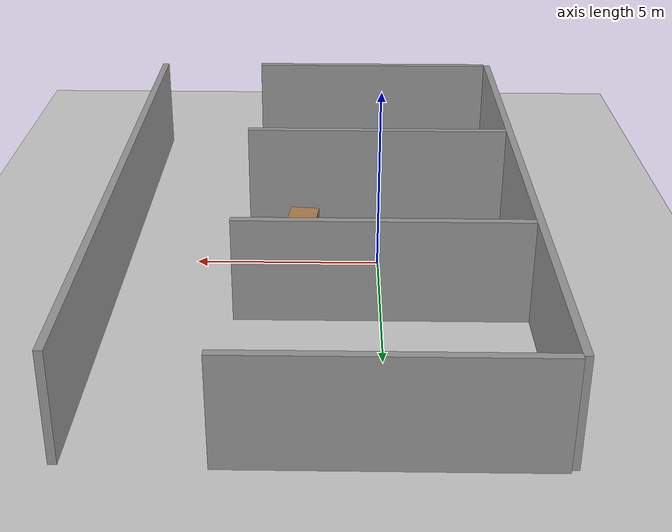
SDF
<sdf version="1.6">
 <world name="default">
  <light name="sun" type="directional">
   <pose>0 0 10 0 -0 0</pose>
   <diffuse>0.8 0.8 0.8 1</diffuse>
   <specular>0.1 0.1 0.1 1</specular>
   <attenuation>
    <range>1000</range>
    <constant>0.9</constant>
    <linear>0.01</linear>
    <quadratic>0.001</quadratic>
   </attenuation>
   <direction>-0.5 0.5 -1</direction>
  </light>
  <model name="ground_plane">
   <static>1</static>
   <link name="link">
    <collision name="collision">
     <geometry><plane><normal>0 0 1</normal><size>100 100</size></plane></geometry>
     <surface><friction><ode><mu>100</mu><mu2>50</mu2></ode></friction></surface>
    </collision>
    <visual name="visual">
     <cast_shadows>0</cast_shadows>
     <geometry><plane><normal>0 0 1</normal><size>100 100</size></plane></geometry>
     <material>
      <script><uri>file://media/materials/scripts/gazebo.material</uri><name>Gazebo/Grey</name></script>
     </material>
    </visual>
   </link>
  </model>
  <gravity>0 0 -9.8</gravity>
  <magnetic_field>6e-06 2.3e-05 -4.2e-05</magnetic_field>
  <atmosphere type="adiabatic"/>
  <physics name="default_physics" default="0" type="ode">
   <max_step_size>0.001</max_step_size>
   <real_time_factor>1</real_time_factor>
   <real_time_update_rate>1000</real_time_update_rate>
  </physics>
  <scene><ambient>0.4 0.4 0.4 1</ambient><background>0.7 0.7 0.7 1</background><shadows>1</shadows></scene>
  <spherical_coordinates>
   <surface_model>EARTH_WGS84</surface_model>
   <latitude_deg>0</latitude_deg>
   <longitude_deg>0</longitude_deg>
   <elevation>0</elevation>
   <heading_deg>0</heading_deg>
  </spherical_coordinates>
  <model name="grey_wall">
   <static>1</static>
   <link name="link">
    <pose>0 0 1.4 0 -0 0</pose>
    <collision name="collision"><geometry><box><size>7.5 0.2 2.8</size></box></geometry></collision>
    <visual name="visual">
     <cast_shadows>0</cast_shadows>
     <geometry><box><size>7.5 0.2 2.8</size></box></geometry>
     <material>
      <script>
       <uri>model://grey_wall/materials/scripts</uri>
       <uri>model://grey_wall/materials/textures</uri>
       <name>vrc/grey_wall</name>
      </script>
     </material>
    </visual>
   </link>
   <pose>0 -3 0 0 -0 0</pose>
  </model>
  <model name="grey_wall_clone">
   <static>1</static>
   <link name="link">
    <pose>0 0 1.4 0 -0 0</pose>
    <collision name="collision"><geometry><box><size>7.5 0.2 2.8</size></box></geometry></collision>
    <visual name="visual">
     <cast_shadows>0</cast_shadows>
     <geometry><box><size>7.5 0.2 2.8</size></box></geometry>
     <material>
      <script>
       <uri>model://grey_wall/materials/scripts</uri>
       <uri>model://grey_wall/materials/textures</uri>
       <name>vrc/grey_wall</name>
      </script>
     </material>
    </visual>
   </link>
   <pose>0 3 0 0 -0 0</pose>
  </model>
  <model name="table">
   <static>0</static>
   <link name="link">
    <collision name="surface">
     <pose>0 0 1 0 -0 0</pose>
     <geometry><box><size>1.5 0.8 0.03</size></box></geometry>
     <surface><friction><ode><mu>0.6</mu><mu2>0.6</mu2></ode></friction></surface>
    </collision>
    <visual name="visual1">
     <pose>0 0 1 0 -0 0</pose>
     <geometry><box><size>1.4 0.8 0.04</size></box></geometry>
     <material>
      <script><uri>file://media/materials/scripts/gazebo.material</uri><name>Gazebo/Wood</name></script>
     </material>
    </visual>
    <collision name="front_left_leg">
     <pose>0.68 0.38 0.5 0 -0 0</pose>
     <geometry><cylinder><radius>0.02</radius><length>1</length></cylinder></geometry>
    </collision>
    <visual name="front_left_leg">
     <pose>0.68 0.38 0.5 0 -0 0</pose>
     <geometry><cylinder><radius>0.02</radius><length>1</length></cylinder></geometry>
     <material>
      <script><uri>file://media/materials/scripts/gazebo.material</uri><name>Gazebo/Grey</name></script>
     </material>
    </visual>
    <collision name="front_right_leg">
     <pose>0.68 -0.38 0.5 0 -0 0</pose>
     <geometry><cylinder><radius>0.02</radius><length>1</length></cylinder></geometry>
    </collision>
    <visual name="front_right_leg">
     <pose>0.68 -0.38 0.5 0 -0 0</pose>
     <geometry><cylinder><radius>0.02</radius><length>1</length></cylinder></geometry>
     <material>
      <script><uri>file://media/materials/scripts/gazebo.material</uri><name>Gazebo/Grey</name></script>
     </material>
    </visual>
    <collision name="back_right_leg">
     <pose>-0.68 -0.38 0.5 0 -0 0</pose>
     <geometry><cylinder><radius>0.02</radius><length>1</length></cylinder></geometry>
    </collision>
    <visual name="back_right_leg">
     <pose>-0.68 -0.38 0.5 0 -0 0</pose>
     <geometry><cylinder><radius>0.02</radius><length>1</length></cylinder></geometry>
     <material>
      <script><uri>file://media/materials/scripts/gazebo.material</uri><name>Gazebo/Grey</name></script>
     </material>
    </visual>
    <collision name="back_left_leg">
     <pose>-0.68 0.38 0.5 0 -0 0</pose>
     <geometry><cylinder><radius>0.02</radius><length>1</length></cylinder></geometry>
    </collision>
    <visual name="back_left_leg">
     <pose>-0.68 0.38 0.5 0 -0 0</pose>
     <geometry><cylinder><radius>0.02</radius><length>1</length></cylinder></geometry>
     <material>
      <script><uri>file://media/materials/scripts/gazebo.material</uri><name>Gazebo/Grey</name></script>
     </material>
    </visual>
    <inertial>
     <inertia><ixx>1</ixx><ixy>0</ixy><ixz>0</ixz><iyy>1</iyy><iyz>0</iyz><izz>1</izz></inertia>
     <mass>1</mass>
    </inertial>
   </link>
   <pose>2.12022 -0.739408 -9e-06 -1e-06 1e-06 1.46372</pose>
  </model>
  <model name="grey_wall_clone_1">
   <static>1</static>
   <link name="link">
    <pose>0 0 1.4 0 -0 0</pose>
    <collision name="collision"><geometry><box><size>7.5 0.2 2.8</size></box></geometry></collision>
    <visual name="visual">
     <cast_shadows>0</cast_shadows>
     <geometry><box><size>7.5 0.2 2.8</size></box></geometry>
     <material>
      <script>
       <uri>model://grey_wall/materials/scripts</uri>
       <uri>model://grey_wall/materials/textures</uri>
       <name>vrc/grey_wall</name>
      </script>
     </material>
    </visual>
   </link>
   <pose>0 -9 0 0 -0 0</pose>
  </model>
  <model name="grey_wall_clone_2">
   <static>1</static>
   <link name="link">
    <pose>0 0 1.4 0 -0 0</pose>
    <collision name="collision"><geometry><box><size>7.5 0.2 2.8</size></box></geometry></collision>
    <visual name="visual">
     <cast_shadows>0</cast_shadows>
     <geometry><box><size>7.5 0.2 2.8</size></box></geometry>
     <material>
      <script>
       <uri>model://grey_wall/materials/scripts</uri>
       <uri>model://grey_wall/materials/textures</uri>
       <name>vrc/grey_wall</name>
      </script>
     </material>
    </visual>
   </link>
   <pose>0 9 0 0 -0 0</pose>
  </model>
  <model name="grey_wall_clone_0_0">
   <link name="link">
    <pose>0 0 1.4 0 -0 0</pose>
    <inertial>
     <mass>10</mass>
     <inertia><ixx>1</ixx><ixy>0</ixy><ixz>0</ixz><iyy>1</iyy><iyz>0</iyz><izz>1</izz></inertia>
    </inertial>
    <visual name="ModelPreview_3::link::visual_1">
     <cast_shadows>0</cast_shadows>
     <geometry><box><size>18 0.2 2.8</size></box></geometry>
     <material>
      <script>
       <uri>model://grey_wall/materials/scripts</uri>
       <uri>model://grey_wall/materials/textures</uri>
       <name>vrc/grey_wall</name>
      </script>
      <ambient>1 1 1 1</ambient>
      <diffuse>1 1 1 1</diffuse>
      <specular>0 0 0 1</specular>
      <emissive>0 0 0 1</emissive>
      <shader type="vertex"><normal_map>__default__</normal_map></shader>
     </material>
    </visual>
    <visual name="ModelPreview_3::link::visual_2">
     <cast_shadows>0</cast_shadows>
     <geometry><box><size>18 0.2 2.8</size></box></geometry>
     <material>
      <script>
       <uri>model://grey_wall/materials/scripts</uri>
       <uri>model://grey_wall/materials/textures</uri>
       <name>vrc/grey_wall</name>
      </script>
      <ambient>1 1 1 1</ambient>
      <diffuse>1 1 1 1</diffuse>
      <specular>0 0 0 1</specular>
      <emissive>0 0 0 1</emissive>
      <shader type="vertex"><normal_map>__default__</normal_map></shader>
     </material>
    </visual>
    <visual name="visual">
     <cast_shadows>0</cast_shadows>
     <geometry><box><size>18 0.2 2.8</size></box></geometry>
     <material>
      <script>
       <uri>model://grey_wall/materials/scripts</uri>
       <uri>model://grey_wall/materials/textures</uri>
       <name>vrc/grey_wall</name>
      </script>
      <ambient>1 1 1 1</ambient>
      <diffuse>1 1 1 1</diffuse>
      <specular>0 0 0 1</specular>
      <emissive>0 0 0 1</emissive>
      <shader type="vertex"><normal_map>__default__</normal_map></shader>
     </material>
    </visual>
    <collision name="collision">
     <geometry><box><size>18 0.2 2.8</size></box></geometry>
     <surface>
      <friction>
       <ode><mu>1</mu><mu2>1</mu2><fdir1>0 0 0</fdir1><slip1>0</slip1><slip2>0</slip2></ode>
       <torsional>
        <coefficient>1</coefficient>
        <patch_radius>0</patch_radius>
        <surface_radius>0</surface_radius>
        <use_patch_radius>1</use_patch_radius>
        <ode><slip>0</slip></ode>
       </torsional>
      </friction>
      <bounce><restitution_coefficient>0</restitution_coefficient><threshold>1e+06</threshold></bounce>
      <contact>
       <collide_without_contact>0</collide_without_contact>
       <collide_without_contact_bitmask>1</collide_without_contact_bitmask>
       <collide_bitmask>1</collide_bitmask>
       <ode>
        <soft_cfm>0</soft_cfm>
        <soft_erp>0.2</soft_erp>
        <kp>1e+13</kp>
        <kd>1</kd>
        <max_vel>0.01</max_vel>
        <min_depth>0</min_depth>
       </ode>
       <bullet>
        <split_impulse>1</split_impulse>
        <split_impulse_penetration_threshold>-0.01</split_impulse_penetration_threshold>
        <soft_cfm>0</soft_cfm>
        <soft_erp>0.2</soft_erp>
        <kp>1e+13</kp>
        <kd>1</kd>
       </bullet>
      </contact>
     </surface>
    </collision>
   </link>
   <static>1</static>
   <pose>7 0 0 0 -0 1.57</pose>
  </model>
  <model name="grey_wall_clone_0_0_clone">
   <link name="link">
    <pose>0 0 1.4 0 -0 0</pose>
    <inertial>
     <mass>10</mass>
     <inertia><ixx>1</ixx><ixy>0</ixy><ixz>0</ixz><iyy>1</iyy><iyz>0</iyz><izz>1</izz></inertia>
    </inertial>
    <visual name="ModelPreview_3::link::visual_1">
     <cast_shadows>0</cast_shadows>
     <geometry><box><size>18 0.2 2.8</size></box></geometry>
     <material>
      <script>
       <uri>model://grey_wall/materials/scripts</uri>
       <uri>model://grey_wall/materials/textures</uri>
       <name>vrc/grey_wall</name>
      </script>
      <ambient>1 1 1 1</ambient>
      <diffuse>1 1 1 1</diffuse>
      <specular>0 0 0 1</specular>
      <emissive>0 0 0 1</emissive>
      <shader type="vertex"><normal_map>__default__</normal_map></shader>
     </material>
    </visual>
    <visual name="ModelPreview_3::link::visual_2">
     <cast_shadows>0</cast_shadows>
     <geometry><box><size>18 0.2 2.8</size></box></geometry>
     <material>
      <script>
       <uri>model://grey_wall/materials/scripts</uri>
       <uri>model://grey_wall/materials/textures</uri>
       <name>vrc/grey_wall</name>
      </script>
      <ambient>1 1 1 1</ambient>
      <diffuse>1 1 1 1</diffuse>
      <specular>0 0 0 1</specular>
      <emissive>0 0 0 1</emissive>
      <shader type="vertex"><normal_map>__default__</normal_map></shader>
     </material>
    </visual>
    <visual name="visual">
     <cast_shadows>0</cast_shadows>
     <geometry><box><size>18 0.2 2.8</size></box></geometry>
     <material>
      <script>
       <uri>model://grey_wall/materials/scripts</uri>
       <uri>model://grey_wall/materials/textures</uri>
       <name>vrc/grey_wall</name>
      </script>
      <ambient>1 1 1 1</ambient>
      <diffuse>1 1 1 1</diffuse>
      <specular>0 0 0 1</specular>
      <emissive>0 0 0 1</emissive>
      <shader type="vertex"><normal_map>__default__</normal_map></shader>
     </material>
    </visual>
    <collision name="collision">
     <geometry><box><size>18 0.2 2.8</size></box></geometry>
     <surface>
      <friction>
       <ode><mu>1</mu><mu2>1</mu2><fdir1>0 0 0</fdir1><slip1>0</slip1><slip2>0</slip2></ode>
       <torsional>
        <coefficient>1</coefficient>
        <patch_radius>0</patch_radius>
        <surface_radius>0</surface_radius>
        <use_patch_radius>1</use_patch_radius>
        <ode><slip>0</slip></ode>
       </torsional>
      </friction>
      <bounce><restitution_coefficient>0</restitution_coefficient><threshold>1e+06</threshold></bounce>
      <contact>
       <collide_without_contact>0</collide_without_contact>
       <collide_without_contact_bitmask>1</collide_without_contact_bitmask>
       <collide_bitmask>1</collide_bitmask>
       <ode>
        <soft_cfm>0</soft_cfm>
        <soft_erp>0.2</soft_erp>
        <kp>1e+13</kp>
        <kd>1</kd>
        <max_vel>0.01</max_vel>
        <min_depth>0</min_depth>
       </ode>
       <bullet>
        <split_impulse>1</split_impulse>
        <split_impulse_penetration_threshold>-0.01</split_impulse_penetration_threshold>
        <soft_cfm>0</soft_cfm>
        <soft_erp>0.2</soft_erp>
        <kp>1e+13</kp>
        <kd>1</kd>
       </bullet>
      </contact>
     </surface>
    </collision>
   </link>
   <static>1</static>
   <pose>-3.85 0 0 0 -0 1.57</pose>
  </model>
 </world>
</sdf>
